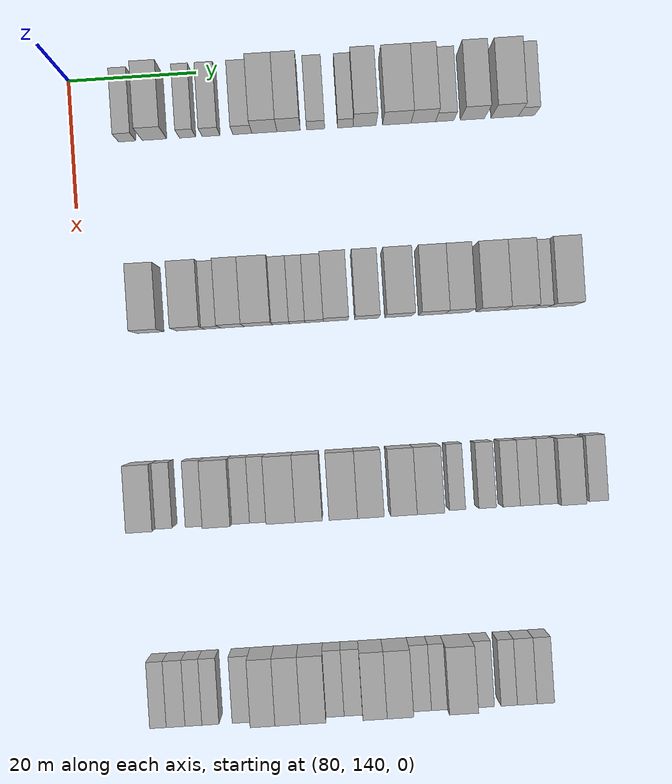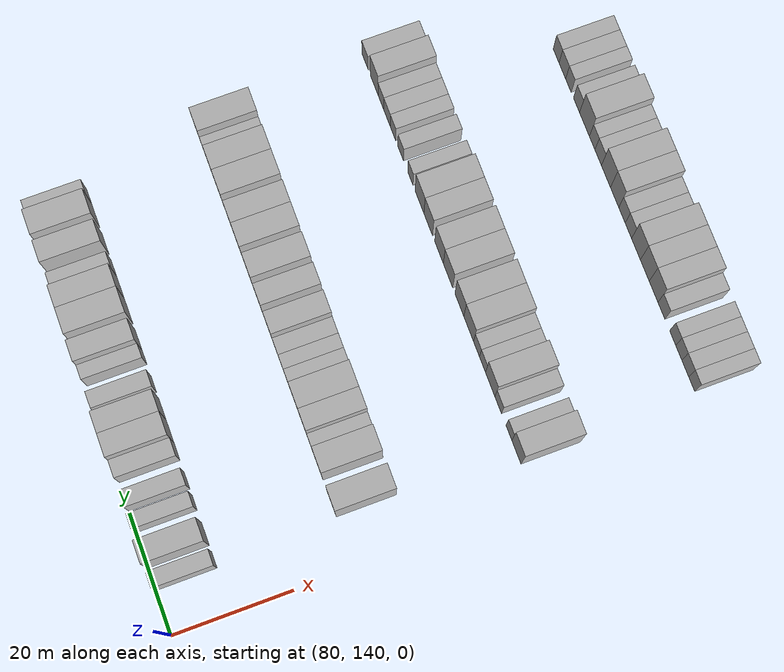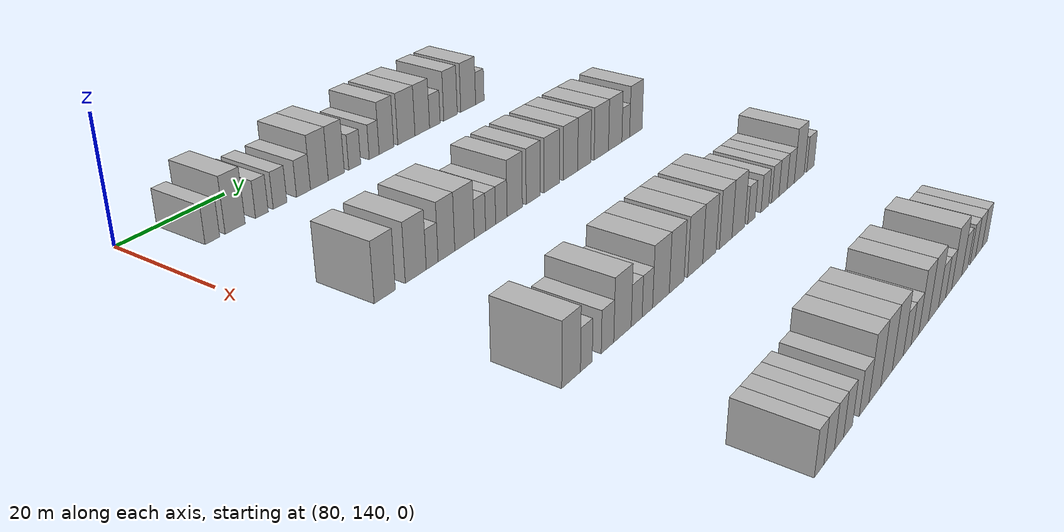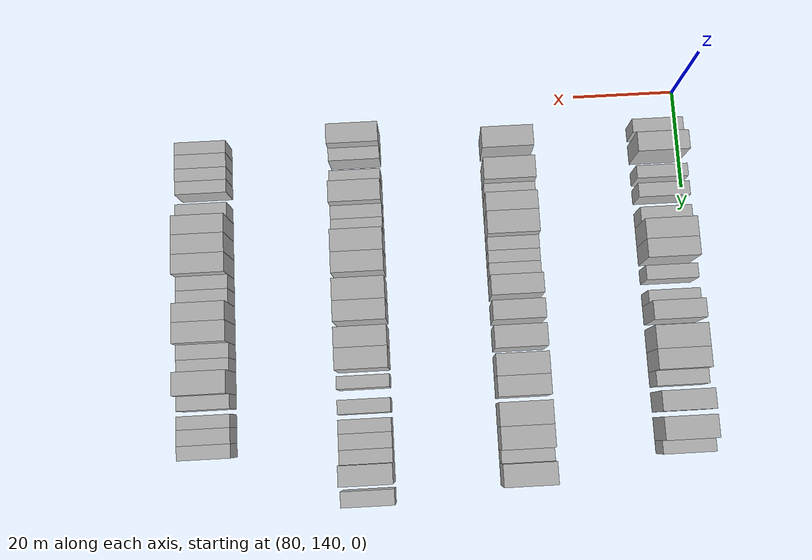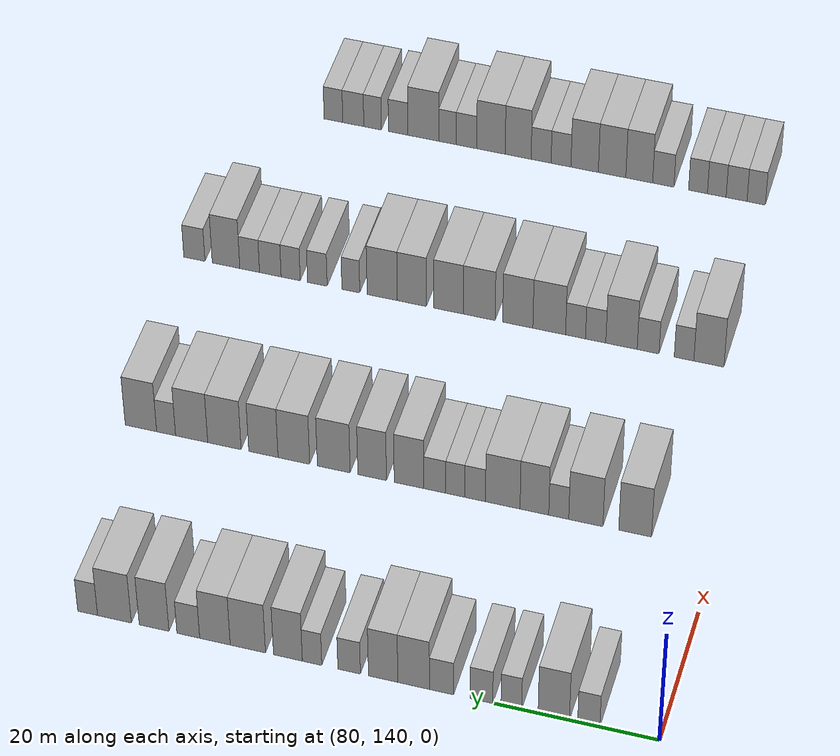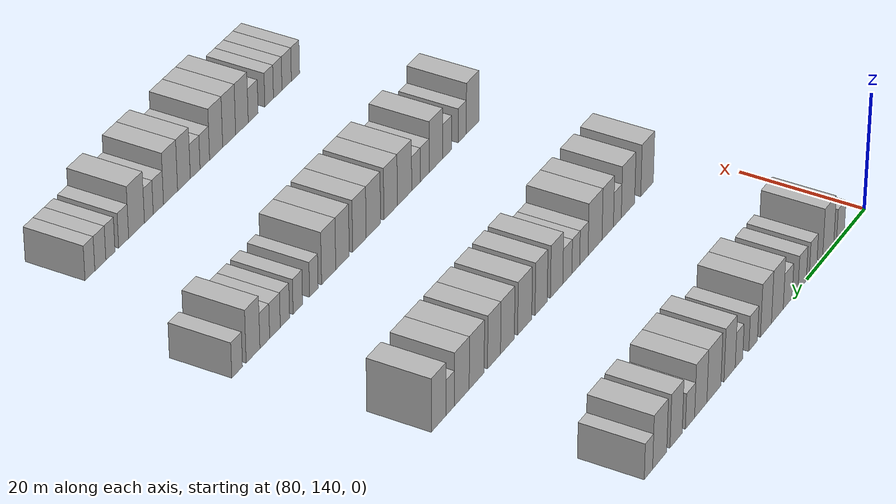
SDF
<sdf version="1.6">
 <world name="default">
  <model name="building_601">
   <static>1</static>
   <pose>85.0000 148.6307 0 0.000000 0.000000 0.000000</pose>
   <link name="link">
    <pose>0 0 3.00 0 0 0</pose>
    <collision name="collision"><geometry><box><size>10.0000 2.6881 6.0000</size></box></geometry></collision>
    <visual name="visual">
     <cast_shadows>0</cast_shadows>
     <geometry><box><size>10.0000 2.6881 6.0000</size></box></geometry>
     <material>
      <script>
       <uri>model://HANNAS_wall/materials/scripts</uri>
       <uri>model://HANNAS_wall/materials/textures</uri>
       <name>vrc/HANNAS_wall</name>
      </script>
     </material>
    </visual>
   </link>
  </model>
  <model name="building_602">
   <static>1</static>
   <pose>85.0000 152.8820 0 0.000000 0.000000 0.000000</pose>
   <link name="link">
    <pose>0 0 4.50 0 0 0</pose>
    <collision name="collision"><geometry><box><size>10.0000 3.8146 9.0000</size></box></geometry></collision>
    <visual name="visual">
     <cast_shadows>0</cast_shadows>
     <geometry><box><size>10.0000 3.8146 9.0000</size></box></geometry>
     <material>
      <script>
       <uri>model://HANNAS_wall/materials/scripts</uri>
       <uri>model://HANNAS_wall/materials/textures</uri>
       <name>vrc/HANNAS_wall</name>
      </script>
     </material>
    </visual>
   </link>
  </model>
  <model name="building_603">
   <static>1</static>
   <pose>85.0000 158.0551 0 0.000000 0.000000 0.000000</pose>
   <link name="link">
    <pose>0 0 3.00 0 0 0</pose>
    <collision name="collision"><geometry><box><size>10.0000 2.5314 6.0000</size></box></geometry></collision>
    <visual name="visual">
     <cast_shadows>0</cast_shadows>
     <geometry><box><size>10.0000 2.5314 6.0000</size></box></geometry>
     <material>
      <script>
       <uri>model://HANNAS_wall/materials/scripts</uri>
       <uri>model://HANNAS_wall/materials/textures</uri>
       <name>vrc/HANNAS_wall</name>
      </script>
     </material>
    </visual>
   </link>
  </model>
  <model name="building_604">
   <static>1</static>
   <pose>85.0000 161.7190 0 0.000000 0.000000 0.000000</pose>
   <link name="link">
    <pose>0 0 3.00 0 0 0</pose>
    <collision name="collision"><geometry><box><size>10.0000 2.7965 6.0000</size></box></geometry></collision>
    <visual name="visual">
     <cast_shadows>0</cast_shadows>
     <geometry><box><size>10.0000 2.7965 6.0000</size></box></geometry>
     <material>
      <script>
       <uri>model://HANNAS_wall/materials/scripts</uri>
       <uri>model://HANNAS_wall/materials/textures</uri>
       <name>vrc/HANNAS_wall</name>
      </script>
     </material>
    </visual>
   </link>
  </model>
  <model name="building_605">
   <static>1</static>
   <pose>85.0000 166.6057 0 0.000000 0.000000 0.000000</pose>
   <link name="link">
    <pose>0 0 3.00 0 0 0</pose>
    <collision name="collision"><geometry><box><size>10.0000 2.9768 6.0000</size></box></geometry></collision>
    <visual name="visual">
     <cast_shadows>0</cast_shadows>
     <geometry><box><size>10.0000 2.9768 6.0000</size></box></geometry>
     <material>
      <script>
       <uri>model://HANNAS_wall/materials/scripts</uri>
       <uri>model://HANNAS_wall/materials/textures</uri>
       <name>vrc/HANNAS_wall</name>
      </script>
     </material>
    </visual>
   </link>
  </model>
  <model name="building_606">
   <static>1</static>
   <pose>85.0000 170.0463 0 0.000000 0.000000 0.000000</pose>
   <link name="link">
    <pose>0 0 4.50 0 0 0</pose>
    <collision name="collision"><geometry><box><size>10.0000 3.9045 9.0000</size></box></geometry></collision>
    <visual name="visual">
     <cast_shadows>0</cast_shadows>
     <geometry><box><size>10.0000 3.9045 9.0000</size></box></geometry>
     <material>
      <script>
       <uri>model://HANNAS_wall/materials/scripts</uri>
       <uri>model://HANNAS_wall/materials/textures</uri>
       <name>vrc/HANNAS_wall</name>
      </script>
     </material>
    </visual>
   </link>
  </model>
  <model name="building_607">
   <static>1</static>
   <pose>85.0000 173.8142 0 0.000000 0.000000 0.000000</pose>
   <link name="link">
    <pose>0 0 4.50 0 0 0</pose>
    <collision name="collision"><geometry><box><size>10.0000 3.6312 9.0000</size></box></geometry></collision>
    <visual name="visual">
     <cast_shadows>0</cast_shadows>
     <geometry><box><size>10.0000 3.6312 9.0000</size></box></geometry>
     <material>
      <script>
       <uri>model://HANNAS_wall/materials/scripts</uri>
       <uri>model://HANNAS_wall/materials/textures</uri>
       <name>vrc/HANNAS_wall</name>
      </script>
     </material>
    </visual>
   </link>
  </model>
  <model name="building_608">
   <static>1</static>
   <pose>85.0000 178.0280 0 0.000000 0.000000 0.000000</pose>
   <link name="link">
    <pose>0 0 3.00 0 0 0</pose>
    <collision name="collision"><geometry><box><size>10.0000 2.7964 6.0000</size></box></geometry></collision>
    <visual name="visual">
     <cast_shadows>0</cast_shadows>
     <geometry><box><size>10.0000 2.7964 6.0000</size></box></geometry>
     <material>
      <script>
       <uri>model://HANNAS_wall/materials/scripts</uri>
       <uri>model://HANNAS_wall/materials/textures</uri>
       <name>vrc/HANNAS_wall</name>
      </script>
     </material>
    </visual>
   </link>
  </model>
  <model name="building_609">
   <static>1</static>
   <pose>85.0000 182.6353 0 0.000000 0.000000 0.000000</pose>
   <link name="link">
    <pose>0 0 3.00 0 0 0</pose>
    <collision name="collision"><geometry><box><size>10.0000 2.4182 6.0000</size></box></geometry></collision>
    <visual name="visual">
     <cast_shadows>0</cast_shadows>
     <geometry><box><size>10.0000 2.4182 6.0000</size></box></geometry>
     <material>
      <script>
       <uri>model://HANNAS_wall/materials/scripts</uri>
       <uri>model://HANNAS_wall/materials/textures</uri>
       <name>vrc/HANNAS_wall</name>
      </script>
     </material>
    </visual>
   </link>
  </model>
  <model name="building_610">
   <static>1</static>
   <pose>85.0000 185.6487 0 0.000000 0.000000 0.000000</pose>
   <link name="link">
    <pose>0 0 4.50 0 0 0</pose>
    <collision name="collision"><geometry><box><size>10.0000 3.6085 9.0000</size></box></geometry></collision>
    <visual name="visual">
     <cast_shadows>0</cast_shadows>
     <geometry><box><size>10.0000 3.6085 9.0000</size></box></geometry>
     <material>
      <script>
       <uri>model://HANNAS_wall/materials/scripts</uri>
       <uri>model://HANNAS_wall/materials/textures</uri>
       <name>vrc/HANNAS_wall</name>
      </script>
     </material>
    </visual>
   </link>
  </model>
  <model name="building_611">
   <static>1</static>
   <pose>85.0000 190.6667 0 0.000000 0.000000 0.000000</pose>
   <link name="link">
    <pose>0 0 4.50 0 0 0</pose>
    <collision name="collision"><geometry><box><size>10.0000 4.4275 9.0000</size></box></geometry></collision>
    <visual name="visual">
     <cast_shadows>0</cast_shadows>
     <geometry><box><size>10.0000 4.4275 9.0000</size></box></geometry>
     <material>
      <script>
       <uri>model://HANNAS_wall/materials/scripts</uri>
       <uri>model://HANNAS_wall/materials/textures</uri>
       <name>vrc/HANNAS_wall</name>
      </script>
     </material>
    </visual>
   </link>
  </model>
  <model name="building_612">
   <static>1</static>
   <pose>85.0000 194.8038 0 0.000000 0.000000 0.000000</pose>
   <link name="link">
    <pose>0 0 4.50 0 0 0</pose>
    <collision name="collision"><geometry><box><size>10.0000 3.8467 9.0000</size></box></geometry></collision>
    <visual name="visual">
     <cast_shadows>0</cast_shadows>
     <geometry><box><size>10.0000 3.8467 9.0000</size></box></geometry>
     <material>
      <script>
       <uri>model://HANNAS_wall/materials/scripts</uri>
       <uri>model://HANNAS_wall/materials/textures</uri>
       <name>vrc/HANNAS_wall</name>
      </script>
     </material>
    </visual>
   </link>
  </model>
  <model name="building_613">
   <static>1</static>
   <pose>85.0000 198.1628 0 0.000000 0.000000 0.000000</pose>
   <link name="link">
    <pose>0 0 3.00 0 0 0</pose>
    <collision name="collision"><geometry><box><size>10.0000 2.8713 6.0000</size></box></geometry></collision>
    <visual name="visual">
     <cast_shadows>0</cast_shadows>
     <geometry><box><size>10.0000 2.8713 6.0000</size></box></geometry>
     <material>
      <script>
       <uri>model://HANNAS_wall/materials/scripts</uri>
       <uri>model://HANNAS_wall/materials/textures</uri>
       <name>vrc/HANNAS_wall</name>
      </script>
     </material>
    </visual>
   </link>
  </model>
  <model name="building_614">
   <static>1</static>
   <pose>85.0000 202.4825 0 0.000000 0.000000 0.000000</pose>
   <link name="link">
    <pose>0 0 4.50 0 0 0</pose>
    <collision name="collision"><geometry><box><size>10.0000 3.7681 9.0000</size></box></geometry></collision>
    <visual name="visual">
     <cast_shadows>0</cast_shadows>
     <geometry><box><size>10.0000 3.7681 9.0000</size></box></geometry>
     <material>
      <script>
       <uri>model://HANNAS_wall/materials/scripts</uri>
       <uri>model://HANNAS_wall/materials/textures</uri>
       <name>vrc/HANNAS_wall</name>
      </script>
     </material>
    </visual>
   </link>
  </model>
  <model name="building_615">
   <static>1</static>
   <pose>85.0000 207.5140 0 0.000000 0.000000 0.000000</pose>
   <link name="link">
    <pose>0 0 4.50 0 0 0</pose>
    <collision name="collision"><geometry><box><size>10.0000 4.2949 9.0000</size></box></geometry></collision>
    <visual name="visual">
     <cast_shadows>0</cast_shadows>
     <geometry><box><size>10.0000 4.2949 9.0000</size></box></geometry>
     <material>
      <script>
       <uri>model://HANNAS_wall/materials/scripts</uri>
       <uri>model://HANNAS_wall/materials/textures</uri>
       <name>vrc/HANNAS_wall</name>
      </script>
     </material>
    </visual>
   </link>
  </model>
  <model name="building_616">
   <static>1</static>
   <pose>85.0000 210.9217 0 0.000000 0.000000 0.000000</pose>
   <link name="link">
    <pose>0 0 3.00 0 0 0</pose>
    <collision name="collision"><geometry><box><size>10.0000 2.5206 6.0000</size></box></geometry></collision>
    <visual name="visual">
     <cast_shadows>0</cast_shadows>
     <geometry><box><size>10.0000 2.5206 6.0000</size></box></geometry>
     <material>
      <script>
       <uri>model://HANNAS_wall/materials/scripts</uri>
       <uri>model://HANNAS_wall/materials/textures</uri>
       <name>vrc/HANNAS_wall</name>
      </script>
     </material>
    </visual>
   </link>
  </model>
  <model name="building_841">
   <static>1</static>
   <pose>115.0000 150.3736 0 0.000000 0.000000 0.000000</pose>
   <link name="link">
    <pose>0 0 4.50 0 0 0</pose>
    <collision name="collision"><geometry><box><size>10.0000 4.1431 9.0000</size></box></geometry></collision>
    <visual name="visual">
     <cast_shadows>0</cast_shadows>
     <geometry><box><size>10.0000 4.1431 9.0000</size></box></geometry>
     <material>
      <script>
       <uri>model://HANNAS_wall/materials/scripts</uri>
       <uri>model://HANNAS_wall/materials/textures</uri>
       <name>vrc/HANNAS_wall</name>
      </script>
     </material>
    </visual>
   </link>
  </model>
  <model name="building_842">
   <static>1</static>
   <pose>115.0000 156.6178 0 0.000000 0.000000 0.000000</pose>
   <link name="link">
    <pose>0 0 4.50 0 0 0</pose>
    <collision name="collision"><geometry><box><size>10.0000 4.3454 9.0000</size></box></geometry></collision>
    <visual name="visual">
     <cast_shadows>0</cast_shadows>
     <geometry><box><size>10.0000 4.3454 9.0000</size></box></geometry>
     <material>
      <script>
       <uri>model://HANNAS_wall/materials/scripts</uri>
       <uri>model://HANNAS_wall/materials/textures</uri>
       <name>vrc/HANNAS_wall</name>
      </script>
     </material>
    </visual>
   </link>
  </model>
  <model name="building_843">
   <static>1</static>
   <pose>115.0000 160.0603 0 0.000000 0.000000 0.000000</pose>
   <link name="link">
    <pose>0 0 3.00 0 0 0</pose>
    <collision name="collision"><geometry><box><size>10.0000 2.5395 6.0000</size></box></geometry></collision>
    <visual name="visual">
     <cast_shadows>0</cast_shadows>
     <geometry><box><size>10.0000 2.5395 6.0000</size></box></geometry>
     <material>
      <script>
       <uri>model://HANNAS_wall/materials/scripts</uri>
       <uri>model://HANNAS_wall/materials/textures</uri>
       <name>vrc/HANNAS_wall</name>
      </script>
     </material>
    </visual>
   </link>
  </model>
  <model name="building_844">
   <static>1</static>
   <pose>115.0000 163.1608 0 0.000000 0.000000 0.000000</pose>
   <link name="link">
    <pose>0 0 4.50 0 0 0</pose>
    <collision name="collision"><geometry><box><size>10.0000 3.6616 9.0000</size></box></geometry></collision>
    <visual name="visual">
     <cast_shadows>0</cast_shadows>
     <geometry><box><size>10.0000 3.6616 9.0000</size></box></geometry>
     <material>
      <script>
       <uri>model://HANNAS_wall/materials/scripts</uri>
       <uri>model://HANNAS_wall/materials/textures</uri>
       <name>vrc/HANNAS_wall</name>
      </script>
     </material>
    </visual>
   </link>
  </model>
  <model name="building_845">
   <static>1</static>
   <pose>115.0000 167.2056 0 0.000000 0.000000 0.000000</pose>
   <link name="link">
    <pose>0 0 4.50 0 0 0</pose>
    <collision name="collision"><geometry><box><size>10.0000 4.4280 9.0000</size></box></geometry></collision>
    <visual name="visual">
     <cast_shadows>0</cast_shadows>
     <geometry><box><size>10.0000 4.4280 9.0000</size></box></geometry>
     <material>
      <script>
       <uri>model://HANNAS_wall/materials/scripts</uri>
       <uri>model://HANNAS_wall/materials/textures</uri>
       <name>vrc/HANNAS_wall</name>
      </script>
     </material>
    </visual>
   </link>
  </model>
  <model name="building_846">
   <static>1</static>
   <pose>115.0000 170.7500 0 0.000000 0.000000 0.000000</pose>
   <link name="link">
    <pose>0 0 3.00 0 0 0</pose>
    <collision name="collision"><geometry><box><size>10.0000 2.6607 6.0000</size></box></geometry></collision>
    <visual name="visual">
     <cast_shadows>0</cast_shadows>
     <geometry><box><size>10.0000 2.6607 6.0000</size></box></geometry>
     <material>
      <script>
       <uri>model://HANNAS_wall/materials/scripts</uri>
       <uri>model://HANNAS_wall/materials/textures</uri>
       <name>vrc/HANNAS_wall</name>
      </script>
     </material>
    </visual>
   </link>
  </model>
  <model name="building_847">
   <static>1</static>
   <pose>115.0000 173.2971 0 0.000000 0.000000 0.000000</pose>
   <link name="link">
    <pose>0 0 3.00 0 0 0</pose>
    <collision name="collision"><geometry><box><size>10.0000 2.4335 6.0000</size></box></geometry></collision>
    <visual name="visual">
     <cast_shadows>0</cast_shadows>
     <geometry><box><size>10.0000 2.4335 6.0000</size></box></geometry>
     <material>
      <script>
       <uri>model://HANNAS_wall/materials/scripts</uri>
       <uri>model://HANNAS_wall/materials/textures</uri>
       <name>vrc/HANNAS_wall</name>
      </script>
     </material>
    </visual>
   </link>
  </model>
  <model name="building_848">
   <static>1</static>
   <pose>115.0000 175.9272 0 0.000000 0.000000 0.000000</pose>
   <link name="link">
    <pose>0 0 3.00 0 0 0</pose>
    <collision name="collision"><geometry><box><size>10.0000 2.8268 6.0000</size></box></geometry></collision>
    <visual name="visual">
     <cast_shadows>0</cast_shadows>
     <geometry><box><size>10.0000 2.8268 6.0000</size></box></geometry>
     <material>
      <script>
       <uri>model://HANNAS_wall/materials/scripts</uri>
       <uri>model://HANNAS_wall/materials/textures</uri>
       <name>vrc/HANNAS_wall</name>
      </script>
     </material>
    </visual>
   </link>
  </model>
  <model name="building_849">
   <static>1</static>
   <pose>115.0000 179.2525 0 0.000000 0.000000 0.000000</pose>
   <link name="link">
    <pose>0 0 4.50 0 0 0</pose>
    <collision name="collision"><geometry><box><size>10.0000 3.8237 9.0000</size></box></geometry></collision>
    <visual name="visual">
     <cast_shadows>0</cast_shadows>
     <geometry><box><size>10.0000 3.8237 9.0000</size></box></geometry>
     <material>
      <script>
       <uri>model://HANNAS_wall/materials/scripts</uri>
       <uri>model://HANNAS_wall/materials/textures</uri>
       <name>vrc/HANNAS_wall</name>
      </script>
     </material>
    </visual>
   </link>
  </model>
  <model name="building_850">
   <static>1</static>
   <pose>115.0000 184.0211 0 0.000000 0.000000 0.000000</pose>
   <link name="link">
    <pose>0 0 4.50 0 0 0</pose>
    <collision name="collision"><geometry><box><size>10.0000 3.7135 9.0000</size></box></geometry></collision>
    <visual name="visual">
     <cast_shadows>0</cast_shadows>
     <geometry><box><size>10.0000 3.7135 9.0000</size></box></geometry>
     <material>
      <script>
       <uri>model://HANNAS_wall/materials/scripts</uri>
       <uri>model://HANNAS_wall/materials/textures</uri>
       <name>vrc/HANNAS_wall</name>
      </script>
     </material>
    </visual>
   </link>
  </model>
  <model name="building_851">
   <static>1</static>
   <pose>115.0000 189.0105 0 0.000000 0.000000 0.000000</pose>
   <link name="link">
    <pose>0 0 4.50 0 0 0</pose>
    <collision name="collision"><geometry><box><size>10.0000 4.2654 9.0000</size></box></geometry></collision>
    <visual name="visual">
     <cast_shadows>0</cast_shadows>
     <geometry><box><size>10.0000 4.2654 9.0000</size></box></geometry>
     <material>
      <script>
       <uri>model://HANNAS_wall/materials/scripts</uri>
       <uri>model://HANNAS_wall/materials/textures</uri>
       <name>vrc/HANNAS_wall</name>
      </script>
     </material>
    </visual>
   </link>
  </model>
  <model name="building_852">
   <static>1</static>
   <pose>115.0000 194.2148 0 0.000000 0.000000 0.000000</pose>
   <link name="link">
    <pose>0 0 4.50 0 0 0</pose>
    <collision name="collision"><geometry><box><size>10.0000 4.1433 9.0000</size></box></geometry></collision>
    <visual name="visual">
     <cast_shadows>0</cast_shadows>
     <geometry><box><size>10.0000 4.1433 9.0000</size></box></geometry>
     <material>
      <script>
       <uri>model://HANNAS_wall/materials/scripts</uri>
       <uri>model://HANNAS_wall/materials/textures</uri>
       <name>vrc/HANNAS_wall</name>
      </script>
     </material>
    </visual>
   </link>
  </model>
  <model name="building_853">
   <static>1</static>
   <pose>115.0000 198.2055 0 0.000000 0.000000 0.000000</pose>
   <link name="link">
    <pose>0 0 4.50 0 0 0</pose>
    <collision name="collision"><geometry><box><size>10.0000 3.8381 9.0000</size></box></geometry></collision>
    <visual name="visual">
     <cast_shadows>0</cast_shadows>
     <geometry><box><size>10.0000 3.8381 9.0000</size></box></geometry>
     <material>
      <script>
       <uri>model://HANNAS_wall/materials/scripts</uri>
       <uri>model://HANNAS_wall/materials/textures</uri>
       <name>vrc/HANNAS_wall</name>
      </script>
     </material>
    </visual>
   </link>
  </model>
  <model name="building_854">
   <static>1</static>
   <pose>115.0000 203.3235 0 0.000000 0.000000 0.000000</pose>
   <link name="link">
    <pose>0 0 4.50 0 0 0</pose>
    <collision name="collision"><geometry><box><size>10.0000 4.3979 9.0000</size></box></geometry></collision>
    <visual name="visual">
     <cast_shadows>0</cast_shadows>
     <geometry><box><size>10.0000 4.3979 9.0000</size></box></geometry>
     <material>
      <script>
       <uri>model://HANNAS_wall/materials/scripts</uri>
       <uri>model://HANNAS_wall/materials/textures</uri>
       <name>vrc/HANNAS_wall</name>
      </script>
     </material>
    </visual>
   </link>
  </model>
  <model name="building_855">
   <static>1</static>
   <pose>115.0000 207.6446 0 0.000000 0.000000 0.000000</pose>
   <link name="link">
    <pose>0 0 4.50 0 0 0</pose>
    <collision name="collision"><geometry><box><size>10.0000 4.2443 9.0000</size></box></geometry></collision>
    <visual name="visual">
     <cast_shadows>0</cast_shadows>
     <geometry><box><size>10.0000 4.2443 9.0000</size></box></geometry>
     <material>
      <script>
       <uri>model://HANNAS_wall/materials/scripts</uri>
       <uri>model://HANNAS_wall/materials/textures</uri>
       <name>vrc/HANNAS_wall</name>
      </script>
     </material>
    </visual>
   </link>
  </model>
  <model name="building_856">
   <static>1</static>
   <pose>115.0000 211.0184 0 0.000000 0.000000 0.000000</pose>
   <link name="link">
    <pose>0 0 3.00 0 0 0</pose>
    <collision name="collision"><geometry><box><size>10.0000 2.5033 6.0000</size></box></geometry></collision>
    <visual name="visual">
     <cast_shadows>0</cast_shadows>
     <geometry><box><size>10.0000 2.5033 6.0000</size></box></geometry>
     <material>
      <script>
       <uri>model://HANNAS_wall/materials/scripts</uri>
       <uri>model://HANNAS_wall/materials/textures</uri>
       <name>vrc/HANNAS_wall</name>
      </script>
     </material>
    </visual>
   </link>
  </model>
  <model name="building_857">
   <static>1</static>
   <pose>115.0000 214.3514 0 0.000000 0.000000 0.000000</pose>
   <link name="link">
    <pose>0 0 4.50 0 0 0</pose>
    <collision name="collision"><geometry><box><size>10.0000 4.1627 9.0000</size></box></geometry></collision>
    <visual name="visual">
     <cast_shadows>0</cast_shadows>
     <geometry><box><size>10.0000 4.1627 9.0000</size></box></geometry>
     <material>
      <script>
       <uri>model://HANNAS_wall/materials/scripts</uri>
       <uri>model://HANNAS_wall/materials/textures</uri>
       <name>vrc/HANNAS_wall</name>
      </script>
     </material>
    </visual>
   </link>
  </model>
  <model name="building_1066">
   <static>1</static>
   <pose>145.0000 148.0199 0 0.000000 0.000000 0.000000</pose>
   <link name="link">
    <pose>0 0 4.50 0 0 0</pose>
    <collision name="collision"><geometry><box><size>10.0000 3.9555 9.0000</size></box></geometry></collision>
    <visual name="visual">
     <cast_shadows>0</cast_shadows>
     <geometry><box><size>10.0000 3.9555 9.0000</size></box></geometry>
     <material>
      <script>
       <uri>model://HANNAS_wall/materials/scripts</uri>
       <uri>model://HANNAS_wall/materials/textures</uri>
       <name>vrc/HANNAS_wall</name>
      </script>
     </material>
    </visual>
   </link>
  </model>
  <model name="building_1067">
   <static>1</static>
   <pose>145.0000 151.2825 0 0.000000 0.000000 0.000000</pose>
   <link name="link">
    <pose>0 0 3.00 0 0 0</pose>
    <collision name="collision"><geometry><box><size>10.0000 2.5697 6.0000</size></box></geometry></collision>
    <visual name="visual">
     <cast_shadows>0</cast_shadows>
     <geometry><box><size>10.0000 2.5697 6.0000</size></box></geometry>
     <material>
      <script>
       <uri>model://HANNAS_wall/materials/scripts</uri>
       <uri>model://HANNAS_wall/materials/textures</uri>
       <name>vrc/HANNAS_wall</name>
      </script>
     </material>
    </visual>
   </link>
  </model>
  <model name="building_1068">
   <static>1</static>
   <pose>145.0000 156.0077 0 0.000000 0.000000 0.000000</pose>
   <link name="link">
    <pose>0 0 3.00 0 0 0</pose>
    <collision name="collision"><geometry><box><size>10.0000 2.8807 6.0000</size></box></geometry></collision>
    <visual name="visual">
     <cast_shadows>0</cast_shadows>
     <geometry><box><size>10.0000 2.8807 6.0000</size></box></geometry>
     <material>
      <script>
       <uri>model://HANNAS_wall/materials/scripts</uri>
       <uri>model://HANNAS_wall/materials/textures</uri>
       <name>vrc/HANNAS_wall</name>
      </script>
     </material>
    </visual>
   </link>
  </model>
  <model name="building_1069">
   <static>1</static>
   <pose>145.0000 159.5205 0 0.000000 0.000000 0.000000</pose>
   <link name="link">
    <pose>0 0 4.50 0 0 0</pose>
    <collision name="collision"><geometry><box><size>10.0000 4.1448 9.0000</size></box></geometry></collision>
    <visual name="visual">
     <cast_shadows>0</cast_shadows>
     <geometry><box><size>10.0000 4.1448 9.0000</size></box></geometry>
     <material>
      <script>
       <uri>model://HANNAS_wall/materials/scripts</uri>
       <uri>model://HANNAS_wall/materials/textures</uri>
       <name>vrc/HANNAS_wall</name>
      </script>
     </material>
    </visual>
   </link>
  </model>
  <model name="building_1070">
   <static>1</static>
   <pose>145.0000 162.9373 0 0.000000 0.000000 0.000000</pose>
   <link name="link">
    <pose>0 0 3.00 0 0 0</pose>
    <collision name="collision"><geometry><box><size>10.0000 2.6889 6.0000</size></box></geometry></collision>
    <visual name="visual">
     <cast_shadows>0</cast_shadows>
     <geometry><box><size>10.0000 2.6889 6.0000</size></box></geometry>
     <material>
      <script>
       <uri>model://HANNAS_wall/materials/scripts</uri>
       <uri>model://HANNAS_wall/materials/textures</uri>
       <name>vrc/HANNAS_wall</name>
      </script>
     </material>
    </visual>
   </link>
  </model>
  <model name="building_1071">
   <static>1</static>
   <pose>145.0000 165.6030 0 0.000000 0.000000 0.000000</pose>
   <link name="link">
    <pose>0 0 3.00 0 0 0</pose>
    <collision name="collision"><geometry><box><size>10.0000 2.6425 6.0000</size></box></geometry></collision>
    <visual name="visual">
     <cast_shadows>0</cast_shadows>
     <geometry><box><size>10.0000 2.6425 6.0000</size></box></geometry>
     <material>
      <script>
       <uri>model://HANNAS_wall/materials/scripts</uri>
       <uri>model://HANNAS_wall/materials/textures</uri>
       <name>vrc/HANNAS_wall</name>
      </script>
     </material>
    </visual>
   </link>
  </model>
  <model name="building_1072">
   <static>1</static>
   <pose>145.0000 169.1011 0 0.000000 0.000000 0.000000</pose>
   <link name="link">
    <pose>0 0 4.50 0 0 0</pose>
    <collision name="collision"><geometry><box><size>10.0000 4.3536 9.0000</size></box></geometry></collision>
    <visual name="visual">
     <cast_shadows>0</cast_shadows>
     <geometry><box><size>10.0000 4.3536 9.0000</size></box></geometry>
     <material>
      <script>
       <uri>model://HANNAS_wall/materials/scripts</uri>
       <uri>model://HANNAS_wall/materials/textures</uri>
       <name>vrc/HANNAS_wall</name>
      </script>
     </material>
    </visual>
   </link>
  </model>
  <model name="building_1073">
   <static>1</static>
   <pose>145.0000 173.2931 0 0.000000 0.000000 0.000000</pose>
   <link name="link">
    <pose>0 0 4.50 0 0 0</pose>
    <collision name="collision"><geometry><box><size>10.0000 4.0303 9.0000</size></box></geometry></collision>
    <visual name="visual">
     <cast_shadows>0</cast_shadows>
     <geometry><box><size>10.0000 4.0303 9.0000</size></box></geometry>
     <material>
      <script>
       <uri>model://HANNAS_wall/materials/scripts</uri>
       <uri>model://HANNAS_wall/materials/textures</uri>
       <name>vrc/HANNAS_wall</name>
      </script>
     </material>
    </visual>
   </link>
  </model>
  <model name="building_1074">
   <static>1</static>
   <pose>145.0000 178.4421 0 0.000000 0.000000 0.000000</pose>
   <link name="link">
    <pose>0 0 4.50 0 0 0</pose>
    <collision name="collision"><geometry><box><size>10.0000 4.2677 9.0000</size></box></geometry></collision>
    <visual name="visual">
     <cast_shadows>0</cast_shadows>
     <geometry><box><size>10.0000 4.2677 9.0000</size></box></geometry>
     <material>
      <script>
       <uri>model://HANNAS_wall/materials/scripts</uri>
       <uri>model://HANNAS_wall/materials/textures</uri>
       <name>vrc/HANNAS_wall</name>
      </script>
     </material>
    </visual>
   </link>
  </model>
  <model name="building_1075">
   <static>1</static>
   <pose>145.0000 182.5563 0 0.000000 0.000000 0.000000</pose>
   <link name="link">
    <pose>0 0 4.50 0 0 0</pose>
    <collision name="collision"><geometry><box><size>10.0000 3.9607 9.0000</size></box></geometry></collision>
    <visual name="visual">
     <cast_shadows>0</cast_shadows>
     <geometry><box><size>10.0000 3.9607 9.0000</size></box></geometry>
     <material>
      <script>
       <uri>model://HANNAS_wall/materials/scripts</uri>
       <uri>model://HANNAS_wall/materials/textures</uri>
       <name>vrc/HANNAS_wall</name>
      </script>
     </material>
    </visual>
   </link>
  </model>
  <model name="building_1076">
   <static>1</static>
   <pose>145.0000 187.4990 0 0.000000 0.000000 0.000000</pose>
   <link name="link">
    <pose>0 0 4.50 0 0 0</pose>
    <collision name="collision"><geometry><box><size>10.0000 3.9247 9.0000</size></box></geometry></collision>
    <visual name="visual">
     <cast_shadows>0</cast_shadows>
     <geometry><box><size>10.0000 3.9247 9.0000</size></box></geometry>
     <material>
      <script>
       <uri>model://HANNAS_wall/materials/scripts</uri>
       <uri>model://HANNAS_wall/materials/textures</uri>
       <name>vrc/HANNAS_wall</name>
      </script>
     </material>
    </visual>
   </link>
  </model>
  <model name="building_1077">
   <static>1</static>
   <pose>145.0000 191.5055 0 0.000000 0.000000 0.000000</pose>
   <link name="link">
    <pose>0 0 4.50 0 0 0</pose>
    <collision name="collision"><geometry><box><size>10.0000 4.0883 9.0000</size></box></geometry></collision>
    <visual name="visual">
     <cast_shadows>0</cast_shadows>
     <geometry><box><size>10.0000 4.0883 9.0000</size></box></geometry>
     <material>
      <script>
       <uri>model://HANNAS_wall/materials/scripts</uri>
       <uri>model://HANNAS_wall/materials/textures</uri>
       <name>vrc/HANNAS_wall</name>
      </script>
     </material>
    </visual>
   </link>
  </model>
  <model name="building_1078">
   <static>1</static>
   <pose>145.0000 195.7629 0 0.000000 0.000000 0.000000</pose>
   <link name="link">
    <pose>0 0 3.00 0 0 0</pose>
    <collision name="collision"><geometry><box><size>10.0000 2.4264 6.0000</size></box></geometry></collision>
    <visual name="visual">
     <cast_shadows>0</cast_shadows>
     <geometry><box><size>10.0000 2.4264 6.0000</size></box></geometry>
     <material>
      <script>
       <uri>model://HANNAS_wall/materials/scripts</uri>
       <uri>model://HANNAS_wall/materials/textures</uri>
       <name>vrc/HANNAS_wall</name>
      </script>
     </material>
    </visual>
   </link>
  </model>
  <model name="building_1079">
   <static>1</static>
   <pose>145.0000 200.3093 0 0.000000 0.000000 0.000000</pose>
   <link name="link">
    <pose>0 0 3.00 0 0 0</pose>
    <collision name="collision"><geometry><box><size>10.0000 2.6665 6.0000</size></box></geometry></collision>
    <visual name="visual">
     <cast_shadows>0</cast_shadows>
     <geometry><box><size>10.0000 2.6665 6.0000</size></box></geometry>
     <material>
      <script>
       <uri>model://HANNAS_wall/materials/scripts</uri>
       <uri>model://HANNAS_wall/materials/textures</uri>
       <name>vrc/HANNAS_wall</name>
      </script>
     </material>
    </visual>
   </link>
  </model>
  <model name="building_1080">
   <static>1</static>
   <pose>145.0000 203.9482 0 0.000000 0.000000 0.000000</pose>
   <link name="link">
    <pose>0 0 3.00 0 0 0</pose>
    <collision name="collision"><geometry><box><size>10.0000 2.6113 6.0000</size></box></geometry></collision>
    <visual name="visual">
     <cast_shadows>0</cast_shadows>
     <geometry><box><size>10.0000 2.6113 6.0000</size></box></geometry>
     <material>
      <script>
       <uri>model://HANNAS_wall/materials/scripts</uri>
       <uri>model://HANNAS_wall/materials/textures</uri>
       <name>vrc/HANNAS_wall</name>
      </script>
     </material>
    </visual>
   </link>
  </model>
  <model name="building_1081">
   <static>1</static>
   <pose>145.0000 206.7343 0 0.000000 0.000000 0.000000</pose>
   <link name="link">
    <pose>0 0 3.00 0 0 0</pose>
    <collision name="collision"><geometry><box><size>10.0000 2.9609 6.0000</size></box></geometry></collision>
    <visual name="visual">
     <cast_shadows>0</cast_shadows>
     <geometry><box><size>10.0000 2.9609 6.0000</size></box></geometry>
     <material>
      <script>
       <uri>model://HANNAS_wall/materials/scripts</uri>
       <uri>model://HANNAS_wall/materials/textures</uri>
       <name>vrc/HANNAS_wall</name>
      </script>
     </material>
    </visual>
   </link>
  </model>
  <model name="building_1082">
   <static>1</static>
   <pose>145.0000 209.5648 0 0.000000 0.000000 0.000000</pose>
   <link name="link">
    <pose>0 0 3.00 0 0 0</pose>
    <collision name="collision"><geometry><box><size>10.0000 2.7001 6.0000</size></box></geometry></collision>
    <visual name="visual">
     <cast_shadows>0</cast_shadows>
     <geometry><box><size>10.0000 2.7001 6.0000</size></box></geometry>
     <material>
      <script>
       <uri>model://HANNAS_wall/materials/scripts</uri>
       <uri>model://HANNAS_wall/materials/textures</uri>
       <name>vrc/HANNAS_wall</name>
      </script>
     </material>
    </visual>
   </link>
  </model>
  <model name="building_1083">
   <static>1</static>
   <pose>145.0000 212.8090 0 0.000000 0.000000 0.000000</pose>
   <link name="link">
    <pose>0 0 4.50 0 0 0</pose>
    <collision name="collision"><geometry><box><size>10.0000 3.7884 9.0000</size></box></geometry></collision>
    <visual name="visual">
     <cast_shadows>0</cast_shadows>
     <geometry><box><size>10.0000 3.7884 9.0000</size></box></geometry>
     <material>
      <script>
       <uri>model://HANNAS_wall/materials/scripts</uri>
       <uri>model://HANNAS_wall/materials/textures</uri>
       <name>vrc/HANNAS_wall</name>
      </script>
     </material>
    </visual>
   </link>
  </model>
  <model name="building_1084">
   <static>1</static>
   <pose>145.0000 217.1594 0 0.000000 0.000000 0.000000</pose>
   <link name="link">
    <pose>0 0 3.00 0 0 0</pose>
    <collision name="collision"><geometry><box><size>10.0000 2.9123 6.0000</size></box></geometry></collision>
    <visual name="visual">
     <cast_shadows>0</cast_shadows>
     <geometry><box><size>10.0000 2.9123 6.0000</size></box></geometry>
     <material>
      <script>
       <uri>model://HANNAS_wall/materials/scripts</uri>
       <uri>model://HANNAS_wall/materials/textures</uri>
       <name>vrc/HANNAS_wall</name>
      </script>
     </material>
    </visual>
   </link>
  </model>
  <model name="building_1283">
   <static>1</static>
   <pose>175.0000 148.5125 0 0.000000 0.000000 0.000000</pose>
   <link name="link">
    <pose>0 0 3.00 0 0 0</pose>
    <collision name="collision"><geometry><box><size>10.0000 2.5009 6.0000</size></box></geometry></collision>
    <visual name="visual">
     <cast_shadows>0</cast_shadows>
     <geometry><box><size>10.0000 2.5009 6.0000</size></box></geometry>
     <material>
      <script>
       <uri>model://HANNAS_wall/materials/scripts</uri>
       <uri>model://HANNAS_wall/materials/textures</uri>
       <name>vrc/HANNAS_wall</name>
      </script>
     </material>
    </visual>
   </link>
  </model>
  <model name="building_1284">
   <static>1</static>
   <pose>175.0000 151.1842 0 0.000000 0.000000 0.000000</pose>
   <link name="link">
    <pose>0 0 3.00 0 0 0</pose>
    <collision name="collision"><geometry><box><size>10.0000 2.8424 6.0000</size></box></geometry></collision>
    <visual name="visual">
     <cast_shadows>0</cast_shadows>
     <geometry><box><size>10.0000 2.8424 6.0000</size></box></geometry>
     <material>
      <script>
       <uri>model://HANNAS_wall/materials/scripts</uri>
       <uri>model://HANNAS_wall/materials/textures</uri>
       <name>vrc/HANNAS_wall</name>
      </script>
     </material>
    </visual>
   </link>
  </model>
  <model name="building_1285">
   <static>1</static>
   <pose>175.0000 153.8818 0 0.000000 0.000000 0.000000</pose>
   <link name="link">
    <pose>0 0 3.00 0 0 0</pose>
    <collision name="collision"><geometry><box><size>10.0000 2.5528 6.0000</size></box></geometry></collision>
    <visual name="visual">
     <cast_shadows>0</cast_shadows>
     <geometry><box><size>10.0000 2.5528 6.0000</size></box></geometry>
     <material>
      <script>
       <uri>model://HANNAS_wall/materials/scripts</uri>
       <uri>model://HANNAS_wall/materials/textures</uri>
       <name>vrc/HANNAS_wall</name>
      </script>
     </material>
    </visual>
   </link>
  </model>
  <model name="building_1286">
   <static>1</static>
   <pose>175.0000 156.4474 0 0.000000 0.000000 0.000000</pose>
   <link name="link">
    <pose>0 0 3.00 0 0 0</pose>
    <collision name="collision"><geometry><box><size>10.0000 2.5785 6.0000</size></box></geometry></collision>
    <visual name="visual">
     <cast_shadows>0</cast_shadows>
     <geometry><box><size>10.0000 2.5785 6.0000</size></box></geometry>
     <material>
      <script>
       <uri>model://HANNAS_wall/materials/scripts</uri>
       <uri>model://HANNAS_wall/materials/textures</uri>
       <name>vrc/HANNAS_wall</name>
      </script>
     </material>
    </visual>
   </link>
  </model>
  <model name="building_1287">
   <static>1</static>
   <pose>175.0000 161.2002 0 0.000000 0.000000 0.000000</pose>
   <link name="link">
    <pose>0 0 3.00 0 0 0</pose>
    <collision name="collision"><geometry><box><size>10.0000 2.9270 6.0000</size></box></geometry></collision>
    <visual name="visual">
     <cast_shadows>0</cast_shadows>
     <geometry><box><size>10.0000 2.9270 6.0000</size></box></geometry>
     <material>
      <script>
       <uri>model://HANNAS_wall/materials/scripts</uri>
       <uri>model://HANNAS_wall/materials/textures</uri>
       <name>vrc/HANNAS_wall</name>
      </script>
     </material>
    </visual>
   </link>
  </model>
  <model name="building_1288">
   <static>1</static>
   <pose>175.0000 164.5097 0 0.000000 0.000000 0.000000</pose>
   <link name="link">
    <pose>0 0 4.50 0 0 0</pose>
    <collision name="collision"><geometry><box><size>10.0000 3.6920 9.0000</size></box></geometry></collision>
    <visual name="visual">
     <cast_shadows>0</cast_shadows>
     <geometry><box><size>10.0000 3.6920 9.0000</size></box></geometry>
     <material>
      <script>
       <uri>model://HANNAS_wall/materials/scripts</uri>
       <uri>model://HANNAS_wall/materials/textures</uri>
       <name>vrc/HANNAS_wall</name>
      </script>
     </material>
    </visual>
   </link>
  </model>
  <model name="building_1289">
   <static>1</static>
   <pose>175.0000 168.2491 0 0.000000 0.000000 0.000000</pose>
   <link name="link">
    <pose>0 0 4.50 0 0 0</pose>
    <collision name="collision"><geometry><box><size>10.0000 3.7869 9.0000</size></box></geometry></collision>
    <visual name="visual">
     <cast_shadows>0</cast_shadows>
     <geometry><box><size>10.0000 3.7869 9.0000</size></box></geometry>
     <material>
      <script>
       <uri>model://HANNAS_wall/materials/scripts</uri>
       <uri>model://HANNAS_wall/materials/textures</uri>
       <name>vrc/HANNAS_wall</name>
      </script>
     </material>
    </visual>
   </link>
  </model>
  <model name="building_1290">
   <static>1</static>
   <pose>175.0000 172.0385 0 0.000000 0.000000 0.000000</pose>
   <link name="link">
    <pose>0 0 4.50 0 0 0</pose>
    <collision name="collision"><geometry><box><size>10.0000 3.7918 9.0000</size></box></geometry></collision>
    <visual name="visual">
     <cast_shadows>0</cast_shadows>
     <geometry><box><size>10.0000 3.7918 9.0000</size></box></geometry>
     <material>
      <script>
       <uri>model://HANNAS_wall/materials/scripts</uri>
       <uri>model://HANNAS_wall/materials/textures</uri>
       <name>vrc/HANNAS_wall</name>
      </script>
     </material>
    </visual>
   </link>
  </model>
  <model name="building_1291">
   <static>1</static>
   <pose>175.0000 175.3059 0 0.000000 0.000000 0.000000</pose>
   <link name="link">
    <pose>0 0 3.00 0 0 0</pose>
    <collision name="collision"><geometry><box><size>10.0000 2.7430 6.0000</size></box></geometry></collision>
    <visual name="visual">
     <cast_shadows>0</cast_shadows>
     <geometry><box><size>10.0000 2.7430 6.0000</size></box></geometry>
     <material>
      <script>
       <uri>model://HANNAS_wall/materials/scripts</uri>
       <uri>model://HANNAS_wall/materials/textures</uri>
       <name>vrc/HANNAS_wall</name>
      </script>
     </material>
    </visual>
   </link>
  </model>
  <model name="building_1292">
   <static>1</static>
   <pose>175.0000 178.0641 0 0.000000 0.000000 0.000000</pose>
   <link name="link">
    <pose>0 0 3.00 0 0 0</pose>
    <collision name="collision"><geometry><box><size>10.0000 2.7734 6.0000</size></box></geometry></collision>
    <visual name="visual">
     <cast_shadows>0</cast_shadows>
     <geometry><box><size>10.0000 2.7734 6.0000</size></box></geometry>
     <material>
      <script>
       <uri>model://HANNAS_wall/materials/scripts</uri>
       <uri>model://HANNAS_wall/materials/textures</uri>
       <name>vrc/HANNAS_wall</name>
      </script>
     </material>
    </visual>
   </link>
  </model>
  <model name="building_1293">
   <static>1</static>
   <pose>175.0000 181.2568 0 0.000000 0.000000 0.000000</pose>
   <link name="link">
    <pose>0 0 4.50 0 0 0</pose>
    <collision name="collision"><geometry><box><size>10.0000 3.6119 9.0000</size></box></geometry></collision>
    <visual name="visual">
     <cast_shadows>0</cast_shadows>
     <geometry><box><size>10.0000 3.6119 9.0000</size></box></geometry>
     <material>
      <script>
       <uri>model://HANNAS_wall/materials/scripts</uri>
       <uri>model://HANNAS_wall/materials/textures</uri>
       <name>vrc/HANNAS_wall</name>
      </script>
     </material>
    </visual>
   </link>
  </model>
  <model name="building_1294">
   <static>1</static>
   <pose>175.0000 185.0436 0 0.000000 0.000000 0.000000</pose>
   <link name="link">
    <pose>0 0 4.50 0 0 0</pose>
    <collision name="collision"><geometry><box><size>10.0000 3.9619 9.0000</size></box></geometry></collision>
    <visual name="visual">
     <cast_shadows>0</cast_shadows>
     <geometry><box><size>10.0000 3.9619 9.0000</size></box></geometry>
     <material>
      <script>
       <uri>model://HANNAS_wall/materials/scripts</uri>
       <uri>model://HANNAS_wall/materials/textures</uri>
       <name>vrc/HANNAS_wall</name>
      </script>
     </material>
    </visual>
   </link>
  </model>
  <model name="building_1295">
   <static>1</static>
   <pose>175.0000 188.4589 0 0.000000 0.000000 0.000000</pose>
   <link name="link">
    <pose>0 0 3.00 0 0 0</pose>
    <collision name="collision"><geometry><box><size>10.0000 2.8687 6.0000</size></box></geometry></collision>
    <visual name="visual">
     <cast_shadows>0</cast_shadows>
     <geometry><box><size>10.0000 2.8687 6.0000</size></box></geometry>
     <material>
      <script>
       <uri>model://HANNAS_wall/materials/scripts</uri>
       <uri>model://HANNAS_wall/materials/textures</uri>
       <name>vrc/HANNAS_wall</name>
      </script>
     </material>
    </visual>
   </link>
  </model>
  <model name="building_1296">
   <static>1</static>
   <pose>175.0000 191.1114 0 0.000000 0.000000 0.000000</pose>
   <link name="link">
    <pose>0 0 3.00 0 0 0</pose>
    <collision name="collision"><geometry><box><size>10.0000 2.4363 6.0000</size></box></geometry></collision>
    <visual name="visual">
     <cast_shadows>0</cast_shadows>
     <geometry><box><size>10.0000 2.4363 6.0000</size></box></geometry>
     <material>
      <script>
       <uri>model://HANNAS_wall/materials/scripts</uri>
       <uri>model://HANNAS_wall/materials/textures</uri>
       <name>vrc/HANNAS_wall</name>
      </script>
     </material>
    </visual>
   </link>
  </model>
  <model name="building_1297">
   <static>1</static>
   <pose>175.0000 194.5065 0 0.000000 0.000000 0.000000</pose>
   <link name="link">
    <pose>0 0 4.50 0 0 0</pose>
    <collision name="collision"><geometry><box><size>10.0000 4.3539 9.0000</size></box></geometry></collision>
    <visual name="visual">
     <cast_shadows>0</cast_shadows>
     <geometry><box><size>10.0000 4.3539 9.0000</size></box></geometry>
     <material>
      <script>
       <uri>model://HANNAS_wall/materials/scripts</uri>
       <uri>model://HANNAS_wall/materials/textures</uri>
       <name>vrc/HANNAS_wall</name>
      </script>
     </material>
    </visual>
   </link>
  </model>
  <model name="building_1298">
   <static>1</static>
   <pose>175.0000 198.0502 0 0.000000 0.000000 0.000000</pose>
   <link name="link">
    <pose>0 0 3.00 0 0 0</pose>
    <collision name="collision"><geometry><box><size>10.0000 2.7336 6.0000</size></box></geometry></collision>
    <visual name="visual">
     <cast_shadows>0</cast_shadows>
     <geometry><box><size>10.0000 2.7336 6.0000</size></box></geometry>
     <material>
      <script>
       <uri>model://HANNAS_wall/materials/scripts</uri>
       <uri>model://HANNAS_wall/materials/textures</uri>
       <name>vrc/HANNAS_wall</name>
      </script>
     </material>
    </visual>
   </link>
  </model>
  <model name="building_1299">
   <static>1</static>
   <pose>175.0000 201.6574 0 0.000000 0.000000 0.000000</pose>
   <link name="link">
    <pose>0 0 3.00 0 0 0</pose>
    <collision name="collision"><geometry><box><size>10.0000 2.4808 6.0000</size></box></geometry></collision>
    <visual name="visual">
     <cast_shadows>0</cast_shadows>
     <geometry><box><size>10.0000 2.4808 6.0000</size></box></geometry>
     <material>
      <script>
       <uri>model://HANNAS_wall/materials/scripts</uri>
       <uri>model://HANNAS_wall/materials/textures</uri>
       <name>vrc/HANNAS_wall</name>
      </script>
     </material>
    </visual>
   </link>
  </model>
  <model name="building_1300">
   <static>1</static>
   <pose>175.0000 204.3847 0 0.000000 0.000000 0.000000</pose>
   <link name="link">
    <pose>0 0 3.00 0 0 0</pose>
    <collision name="collision"><geometry><box><size>10.0000 2.9737 6.0000</size></box></geometry></collision>
    <visual name="visual">
     <cast_shadows>0</cast_shadows>
     <geometry><box><size>10.0000 2.9737 6.0000</size></box></geometry>
     <material>
      <script>
       <uri>model://HANNAS_wall/materials/scripts</uri>
       <uri>model://HANNAS_wall/materials/textures</uri>
       <name>vrc/HANNAS_wall</name>
      </script>
     </material>
    </visual>
   </link>
  </model>
  <model name="building_1301">
   <static>1</static>
   <pose>175.0000 207.1931 0 0.000000 0.000000 0.000000</pose>
   <link name="link">
    <pose>0 0 3.00 0 0 0</pose>
    <collision name="collision"><geometry><box><size>10.0000 2.6433 6.0000</size></box></geometry></collision>
    <visual name="visual">
     <cast_shadows>0</cast_shadows>
     <geometry><box><size>10.0000 2.6433 6.0000</size></box></geometry>
     <material>
      <script>
       <uri>model://HANNAS_wall/materials/scripts</uri>
       <uri>model://HANNAS_wall/materials/textures</uri>
       <name>vrc/HANNAS_wall</name>
      </script>
     </material>
    </visual>
   </link>
  </model>
 </world>
</sdf>
